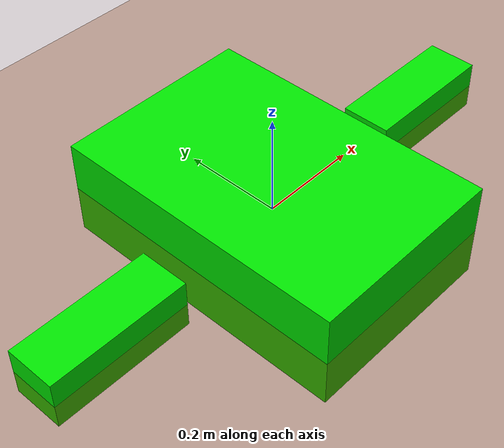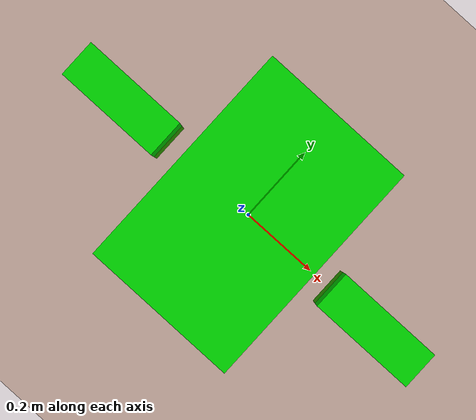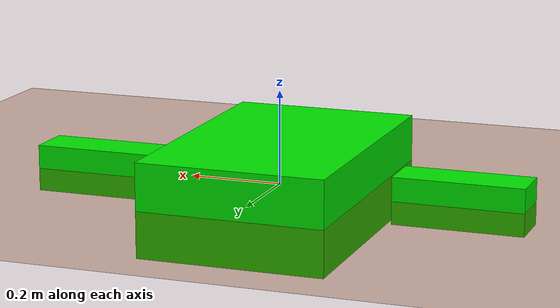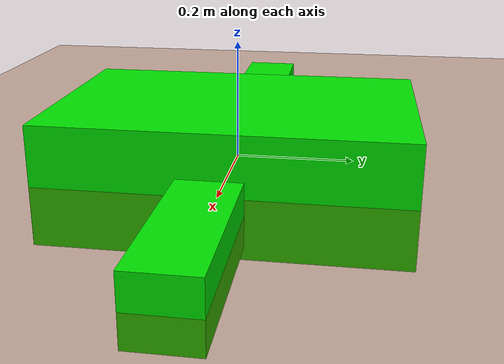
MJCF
<mujoco>
  <worldbody>
    <light diffuse=".5 .5 .5" pos="0 0 0" dir="0 -1 0" />
    <geom type="plane" size="10 10 0.1" rgba=".5 0.2 0 1" />
    <body name="unit0" pos="0 0 0" euler="0 0 0">
      <joint name="body_joint0" type="free" axis="0 0 0" pos="0 0 0" range="-20 20" />
      <body name="body0" pos="0 0.0 0" euler="0 0 0">
        <geom type="box" size=".2 .3 .1" rgba="0 .9 0 1" mass="1.8561191635102363" />
      </body>
      <body name="body0leg1" pos=".4 0.0 0" euler="0 -90 90">
        <joint name="body0j1" type="hinge" axis="0 1 0" pos="0 0 .25" range="-30 30" />
        <geom type="box" size=".05 .05 0.1394324638809215" rgba="0 .9 0 1" mass="0.5487104324568185" />
      </body>
      <body name="body0leg2" pos="-.4 0.0 0" euler="0 90 -90">
        <joint name="body0j2" type="hinge" axis="0 1 0" pos="0 0 .25" range="-30 30" />
        <geom type="box" size=".05 .05 0.1394324638809215" rgba="0 .9 0 1" mass="0.5487104324568185" />
      </body>
    </body>
  </worldbody>
  <actuator>
    <motor joint="body0j1" name="m_body0j1" gear="5" ctrllimited="true" ctrlrange="-10 10" />
    <motor joint="body0j2" name="m_body0j2" gear="5" ctrllimited="true" ctrlrange="-10 10" />
  </actuator>
</mujoco>
